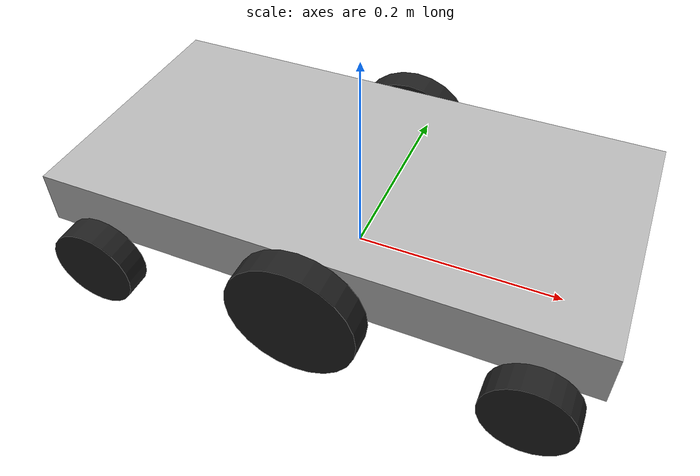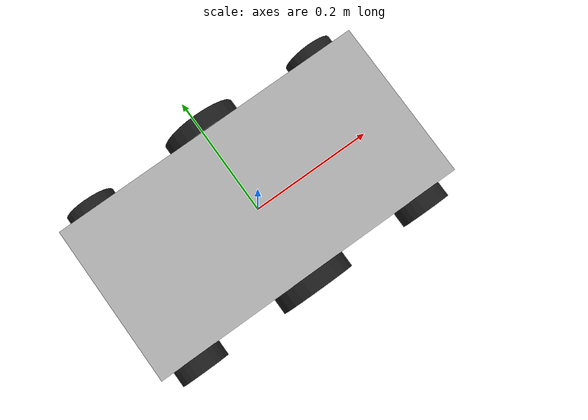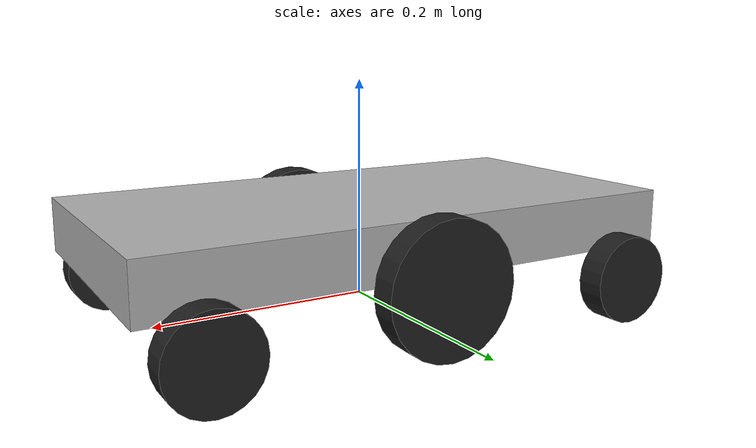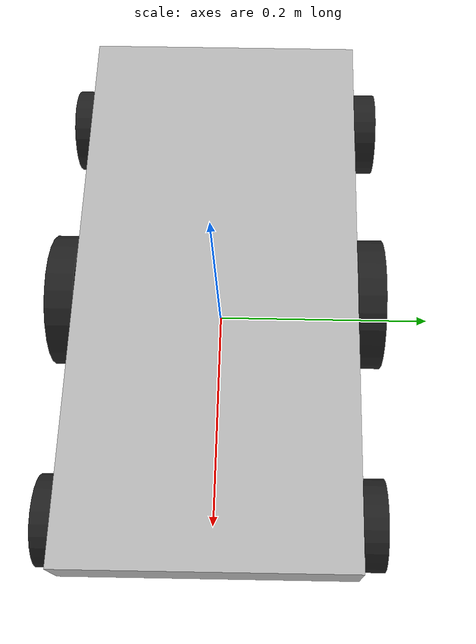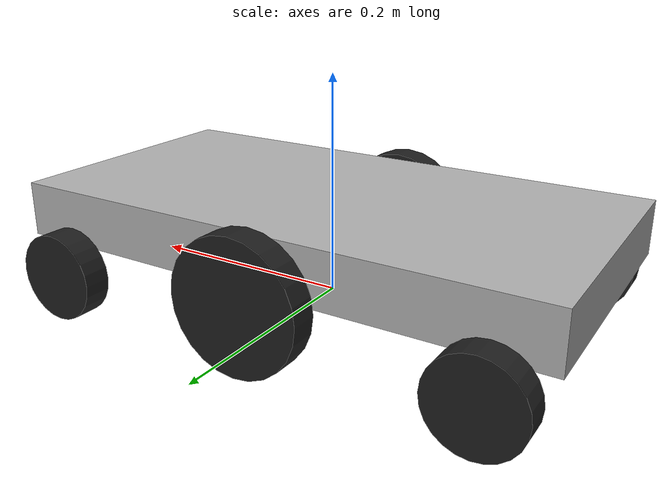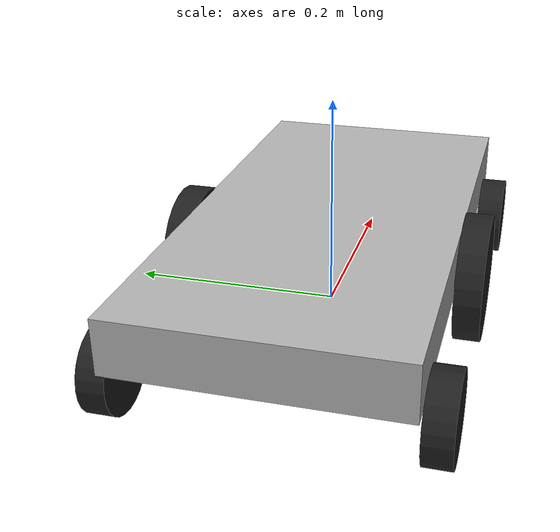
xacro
<?xml version="1.0"?>

<robot name="robot_body"
    xmlns:xacro="http://ros.org/wiki/xacro">

    <xacro:property name="PI" value="3.14159"/>

    <!-- Vehicle Geometries -->
    <xacro:property name="base_link_x" value="0.5"/>
    <xacro:property name="base_link_y" value="0.25"/>
    <xacro:property name="base_link_height" value="0.05"/>
    <xacro:property name="wheel_length" value="0.025"/>

    <!-- Another definition -->
    <xacro:property name="earth_space" value="0.045"/>
    <xacro:property name="base_footprint_radius" value="0.001" />

    <link name="base_footprint">
      <visual>
        <geometry>
          <sphere radius="${base_footprint_radius}" />
        </geometry>
      </visual>
    </link>

    <link name="base_link">
      <visual>
        <geometry>
          <box size="${base_link_x} ${base_link_y} ${base_link_height}"/>
        </geometry>
        <origin xyz="0 0 0" rpy="0 0 0" />
        <material name="white">
          <color rgba="0.7 0.7 0.7 1" />
        </material>
      </visual>
       <collision>
        <geometry>
          <box size="${base_link_x} ${base_link_y} ${base_link_height}"/>
        </geometry>
        <origin xyz="0 0 0" rpy="0 0 0" />
      </collision>
      <xacro:Box_inertial_matrix m="1" l="${base_link_x}" w="${base_link_y}" h="${base_link_height}" />
    </link>

    <joint name="base_link2base_footprint" type="fixed">
      <parent link="base_footprint" />
      <child link="base_link" />
      <origin xyz="0 0 ${earth_space + base_link_height / 2 }" />
    </joint>

    <xacro:macro name="add_wheels" params="name wheel_radius x y z">
      <link name="${name}_wheel">
        <visual>
          <geometry>
            <cylinder radius="${wheel_radius}" length="${wheel_length}" />
          </geometry>
          <origin xyz="0.0 0.0 0.0" rpy="${PI / 2} 0.0 0.0" />
          <material name="black" />
        </visual>
        <collision>
          <geometry>
            <cylinder radius="${wheel_radius}" length="${wheel_length}" />
          </geometry>
          <origin xyz="0 0 0" rpy="${PI / 2} 0 0" />
        </collision>
        <xacro:cylinder_inertial_matrix m="0.4" r="${wheel_radius}" h="${wheel_length}"/>

      </link>

      <joint name="${name}_wheel2base_link" type="continuous">
        <parent link="base_link" />
        <child link="${name}_wheel" />
        <origin xyz="${x} ${y} ${z}" />
        <axis xyz="0 1 0" />
      </joint>
    </xacro:macro>

    <xacro:add_wheels name="left_front" wheel_radius="0.04"  x="0.2" y="${(base_link_y + wheel_length)/2}" z="-0.05"/>
    <xacro:add_wheels name="left_mid" wheel_radius="0.06"  x="0" y="${(base_link_y + wheel_length)/2}" z="-0.03"/>
    <xacro:add_wheels name="left_rear" wheel_radius="0.04"  x="-0.2" y="${(base_link_y + wheel_length)/2}" z="-0.05"/>

    <xacro:add_wheels name="right_front" wheel_radius="0.04"  x="0.2" y="-${(base_link_y + wheel_length)/2}" z="-0.05"/>
    <xacro:add_wheels name="right_mid" wheel_radius="0.06"  x="0" y="-${(base_link_y + wheel_length)/2}" z="-0.03"/>
    <xacro:add_wheels name="right_rear" wheel_radius="0.04"  x="-0.2" y="-${(base_link_y + wheel_length)/2}" z="-0.05"/>

</robot>
